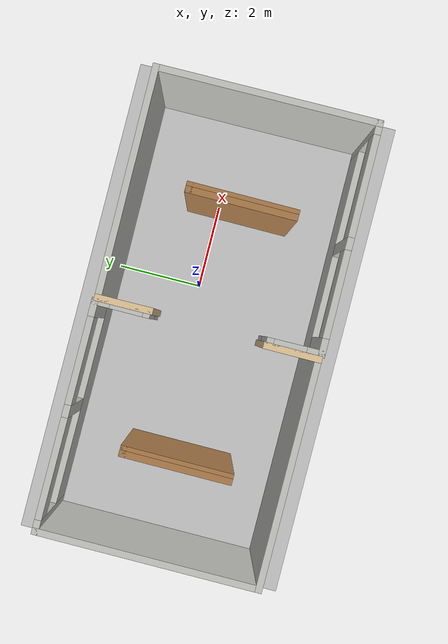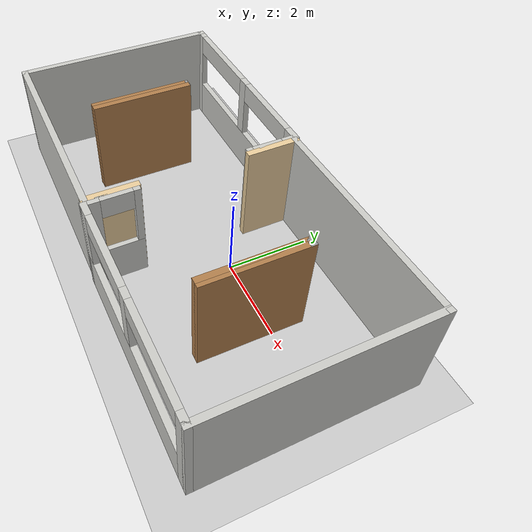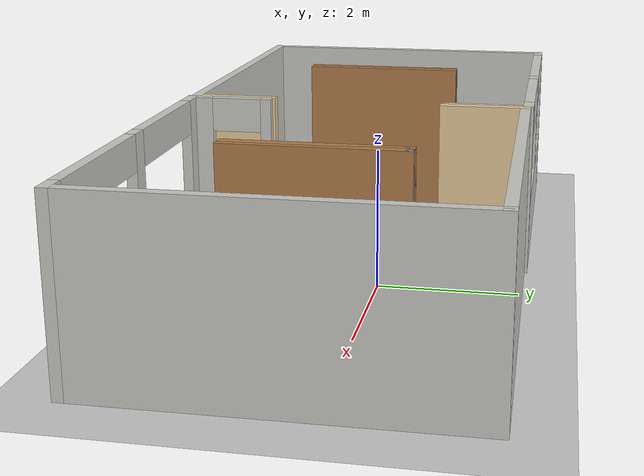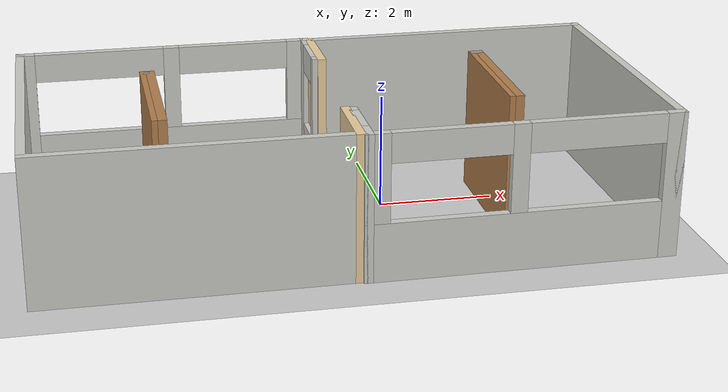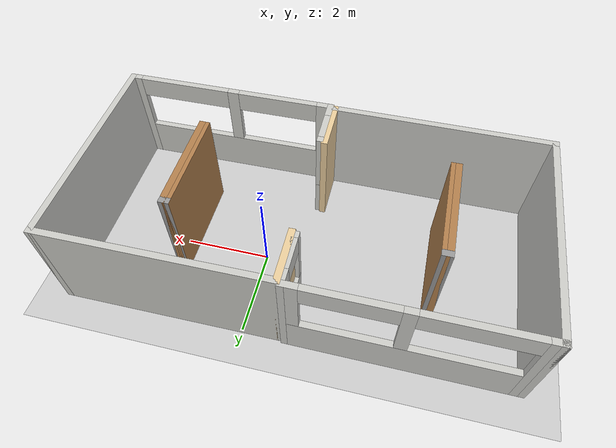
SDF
<sdf version="1.6">
 <world name="default">
  <light name="sun" type="directional">
   <pose>0 0 10 0 -0 0</pose>
   <diffuse>0.8 0.8 0.8 1</diffuse>
   <specular>0.2 0.2 0.2 1</specular>
   <attenuation>
    <range>1000</range>
    <constant>0.9</constant>
    <linear>0.01</linear>
    <quadratic>0.001</quadratic>
   </attenuation>
   <direction>-0.5 0.1 -0.9</direction>
  </light>
  <model name="ground_plane">
   <static>1</static>
   <link name="link">
    <collision name="collision">
     <geometry><plane><normal>0 0 1</normal><size>100 100</size></plane></geometry>
     <surface><friction><ode><mu>100</mu><mu2>50</mu2></ode></friction></surface>
    </collision>
    <visual name="visual">
     <cast_shadows>0</cast_shadows>
     <geometry><plane><normal>0 0 1</normal><size>100 100</size></plane></geometry>
     <material>
      <script><uri>file://media/materials/scripts/gazebo.material</uri><name>Gazebo/Grey</name></script>
     </material>
    </visual>
   </link>
  </model>
  <gravity>0 0 -9.8</gravity>
  <magnetic_field>6e-06 2.3e-05 -4.2e-05</magnetic_field>
  <atmosphere type="adiabatic"/>
  <physics name="default_physics" default="0" type="ode">
   <max_step_size>0.001</max_step_size>
   <real_time_factor>1</real_time_factor>
   <real_time_update_rate>1000</real_time_update_rate>
  </physics>
  <scene><ambient>0.4 0.4 0.4 1</ambient><background>0.7 0.7 0.7 1</background><shadows>1</shadows></scene>
  <spherical_coordinates>
   <surface_model>EARTH_WGS84</surface_model>
   <latitude_deg>0</latitude_deg>
   <longitude_deg>0</longitude_deg>
   <elevation>0</elevation>
   <heading_deg>0</heading_deg>
  </spherical_coordinates>
  <model name="Bay_Area">
   <pose>-3.5356 -0.453186 0 0 -0 0</pose>
   <link name="Wall_10">
    <collision name="Wall_10_Collision">
     <geometry><box><size>1.295 0.15 2.5</size></box></geometry>
     <pose>0 0 1.25 0 -0 0</pose>
    </collision>
    <visual name="Wall_10_Visual">
     <pose>0 0 1.25 0 -0 0</pose>
     <geometry><box><size>1.295 0.15 2.5</size></box></geometry>
     <material>
      <script><uri>file://media/materials/scripts/gazebo.material</uri><name>Gazebo/Grey</name></script>
      <ambient>0.921569 0.807843 0.615686 1</ambient>
     </material>
     <meta><layer>0</layer></meta>
    </visual>
    <pose>2.54 -1.8975 0 0 -0 1.5708</pose>
   </link>
   <link name="Wall_13">
    <collision name="Wall_13_Collision">
     <geometry><box><size>5.23 0.15 2.5</size></box></geometry>
     <pose>0 0 1.25 0 -0 0</pose>
    </collision>
    <visual name="Wall_13_Visual">
     <pose>0 0 1.25 0 -0 0</pose>
     <geometry><box><size>5.23 0.15 2.5</size></box></geometry>
     <material>
      <script><uri>file://media/materials/scripts/gazebo.material</uri><name>Gazebo/CeilingTiled</name></script>
      <ambient>0.921569 0.807843 0.615686 1</ambient>
     </material>
     <meta><layer>0</layer></meta>
    </visual>
    <pose>0 -2.47 0 0 -0 0</pose>
   </link>
   <link name="Wall_15">
    <pose>0 2.47 0 0 -0 0</pose>
    <visual name="Wall_15_Visual_0">
     <pose>-2.452 0 1.25 0 -0 0</pose>
     <geometry><box><size>0.326 0.15 2.5</size></box></geometry>
     <material>
      <script><uri>file://media/materials/scripts/gazebo.material</uri><name>Gazebo/CeilingTiled</name></script>
      <ambient>0.921569 0.807843 0.615686 1</ambient>
     </material>
     <meta><layer>0</layer></meta>
    </visual>
    <collision name="Wall_15_Collision_0">
     <geometry><box><size>0.326 0.15 2.5</size></box></geometry>
     <pose>-2.452 0 1.25 0 -0 0</pose>
    </collision>
    <visual name="Wall_15_Visual_1">
     <pose>0.163 0 0.5 0 -0 0</pose>
     <geometry><box><size>4.904 0.15 1</size></box></geometry>
     <material>
      <script><uri>file://media/materials/scripts/gazebo.material</uri><name>Gazebo/CeilingTiled</name></script>
      <ambient>0.921569 0.807843 0.615686 1</ambient>
     </material>
     <meta><layer>0</layer></meta>
    </visual>
    <collision name="Wall_15_Collision_1">
     <geometry><box><size>4.904 0.15 1</size></box></geometry>
     <pose>0.163 0 0.5 0 -0 0</pose>
    </collision>
    <visual name="Wall_15_Visual_2">
     <pose>0.111 0 1.75 0 -0 0</pose>
     <geometry><box><size>0.28 0.15 1.5</size></box></geometry>
     <material>
      <script><uri>file://media/materials/scripts/gazebo.material</uri><name>Gazebo/CeilingTiled</name></script>
      <ambient>0.921569 0.807843 0.615686 1</ambient>
     </material>
     <meta><layer>0</layer></meta>
    </visual>
    <collision name="Wall_15_Collision_2">
     <geometry><box><size>0.28 0.15 1.5</size></box></geometry>
     <pose>0.111 0 1.75 0 -0 0</pose>
    </collision>
    <visual name="Wall_15_Visual_3">
     <pose>2.408 0 1.75 0 -0 0</pose>
     <geometry><box><size>0.414 0.15 1.5</size></box></geometry>
     <material>
      <script><uri>file://media/materials/scripts/gazebo.material</uri><name>Gazebo/CeilingTiled</name></script>
      <ambient>0.921569 0.807843 0.615686 1</ambient>
     </material>
     <meta><layer>0</layer></meta>
    </visual>
    <collision name="Wall_15_Collision_3">
     <geometry><box><size>0.414 0.15 1.5</size></box></geometry>
     <pose>2.408 0 1.75 0 -0 0</pose>
    </collision>
    <visual name="Wall_15_Visual_4">
     <pose>-1.159 0 2.25 0 -0 0</pose>
     <geometry><box><size>2.26 0.15 0.5</size></box></geometry>
     <material>
      <script><uri>file://media/materials/scripts/gazebo.material</uri><name>Gazebo/CeilingTiled</name></script>
      <ambient>0.921569 0.807843 0.615686 1</ambient>
     </material>
     <meta><layer>0</layer></meta>
    </visual>
    <collision name="Wall_15_Collision_4">
     <geometry><box><size>2.26 0.15 0.5</size></box></geometry>
     <pose>-1.159 0 2.25 0 -0 0</pose>
    </collision>
    <visual name="Wall_15_Visual_5">
     <pose>1.226 0 2.25 0 -0 0</pose>
     <geometry><box><size>1.95 0.15 0.5</size></box></geometry>
     <material>
      <script><uri>file://media/materials/scripts/gazebo.material</uri><name>Gazebo/CeilingTiled</name></script>
      <ambient>0.921569 0.807843 0.615686 1</ambient>
     </material>
     <meta><layer>0</layer></meta>
    </visual>
    <collision name="Wall_15_Collision_5">
     <geometry><box><size>1.95 0.15 0.5</size></box></geometry>
     <pose>1.226 0 2.25 0 -0 0</pose>
    </collision>
   </link>
   <link name="Wall_17">
    <pose>2.54 1.8975 0 0 -0 -1.5708</pose>
    <visual name="Wall_17_Visual_0">
     <pose>-0.445 0 1.25 0 -0 0</pose>
     <geometry><box><size>0.405 0.15 2.5</size></box></geometry>
     <material>
      <script><uri>file://media/materials/scripts/gazebo.material</uri><name>Gazebo/CeilingTiled</name></script>
      <ambient>0.921569 0.807843 0.615686 1</ambient>
     </material>
     <meta><layer>0</layer></meta>
    </visual>
    <collision name="Wall_17_Collision_0">
     <geometry><box><size>0.405 0.15 2.5</size></box></geometry>
     <pose>-0.445 0 1.25 0 -0 0</pose>
    </collision>
    <visual name="Wall_17_Visual_1">
     <pose>0.2025 0 0.5 0 -0 0</pose>
     <geometry><box><size>0.89 0.15 1</size></box></geometry>
     <material>
      <script><uri>file://media/materials/scripts/gazebo.material</uri><name>Gazebo/CeilingTiled</name></script>
      <ambient>0.921569 0.807843 0.615686 1</ambient>
     </material>
     <meta><layer>0</layer></meta>
    </visual>
    <collision name="Wall_17_Collision_1">
     <geometry><box><size>0.89 0.15 1</size></box></geometry>
     <pose>0.2025 0 0.5 0 -0 0</pose>
    </collision>
    <visual name="Wall_17_Visual_2">
     <pose>0.5675 0 1.75 0 -0 0</pose>
     <geometry><box><size>0.16 0.15 1.5</size></box></geometry>
     <material>
      <script><uri>file://media/materials/scripts/gazebo.material</uri><name>Gazebo/CeilingTiled</name></script>
      <ambient>0.921569 0.807843 0.615686 1</ambient>
     </material>
     <meta><layer>0</layer></meta>
    </visual>
    <collision name="Wall_17_Collision_2">
     <geometry><box><size>0.16 0.15 1.5</size></box></geometry>
     <pose>0.5675 0 1.75 0 -0 0</pose>
    </collision>
    <visual name="Wall_17_Visual_3">
     <pose>0.1225 0 2.25 0 -0 0</pose>
     <geometry><box><size>0.73 0.15 0.5</size></box></geometry>
     <material>
      <script><uri>file://media/materials/scripts/gazebo.material</uri><name>Gazebo/CeilingTiled</name></script>
      <ambient>0.921569 0.807843 0.615686 1</ambient>
     </material>
     <meta><layer>0</layer></meta>
    </visual>
    <collision name="Wall_17_Collision_3">
     <geometry><box><size>0.73 0.15 0.5</size></box></geometry>
     <pose>0.1225 0 2.25 0 -0 0</pose>
    </collision>
   </link>
   <link name="Wall_8">
    <collision name="Wall_8_Collision">
     <geometry><box><size>5.09 0.15 2.5</size></box></geometry>
     <pose>0 0 1.25 0 -0 0</pose>
    </collision>
    <visual name="Wall_8_Visual">
     <pose>0 0 1.25 0 -0 0</pose>
     <geometry><box><size>5.09 0.15 2.5</size></box></geometry>
     <material>
      <script><uri>file://media/materials/scripts/gazebo.material</uri><name>Gazebo/CeilingTiled</name></script>
      <ambient>0.921569 0.807843 0.615686 1</ambient>
     </material>
     <meta><layer>0</layer></meta>
    </visual>
    <pose>-2.54 0 0 0 -0 -1.5708</pose>
   </link>
   <static>1</static>
  </model>
  <model name="Wall">
   <pose>-2.19519 -0.060066 0 0 -0 0</pose>
   <link name="Wall_3">
    <collision name="Wall_3_Collision">
     <geometry><box><size>2.5 0.15 2.5</size></box></geometry>
     <pose>0 0 1.25 0 -0 0</pose>
    </collision>
    <visual name="Wall_3_Visual">
     <pose>0 0 1.25 0 -0 0</pose>
     <geometry><box><size>2.5 0.15 2.5</size></box></geometry>
     <material>
      <script><uri>file://media/materials/scripts/gazebo.material</uri><name>Gazebo/Wood</name></script>
      <ambient>1 1 1 1</ambient>
     </material>
     <meta><layer>0</layer></meta>
    </visual>
    <pose>-1.8075 -0.4875 0 0 -0 1.5708</pose>
   </link>
   <link name="Wall_4">
    <collision name="Wall_4_Collision">
     <geometry><box><size>0.25 0.15 2.5</size></box></geometry>
     <pose>0 0 1.25 0 -0 0</pose>
    </collision>
    <visual name="Wall_4_Visual">
     <pose>0 0 1.25 0 -0 0</pose>
     <geometry><box><size>0.25 0.15 2.5</size></box></geometry>
     <material>
      <script><uri>file://media/materials/scripts/gazebo.material</uri><name>Gazebo/Grey</name></script>
      <ambient>1 1 1 1</ambient>
     </material>
     <meta><layer>0</layer></meta>
    </visual>
    <pose>-1.7575 0.6875 0 0 -0 0</pose>
   </link>
   <link name="Wall_5">
    <collision name="Wall_5_Collision">
     <geometry><box><size>2.5 0.15 2.5</size></box></geometry>
     <pose>0 0 1.25 0 -0 0</pose>
    </collision>
    <visual name="Wall_5_Visual">
     <pose>0 0 1.25 0 -0 0</pose>
     <geometry><box><size>2.5 0.15 2.5</size></box></geometry>
     <material>
      <script><uri>file://media/materials/scripts/gazebo.material</uri><name>Gazebo/Wood</name></script>
      <ambient>1 1 1 1</ambient>
     </material>
     <meta><layer>0</layer></meta>
    </visual>
    <pose>-1.7075 -0.4875 0 0 -0 -1.5708</pose>
   </link>
   <static>1</static>
  </model>
  <model name="modelBay2">
   <model name="Bay_Area">
    <pose>-2e-06 0 0 0 0 -3.1339</pose>
    <link name="Wall_10">
     <collision name="Wall_10_Collision">
      <geometry><box><size>1.295 0.15 2.5</size></box></geometry>
      <pose>0 0 1.25 0 -0 0</pose>
     </collision>
     <visual name="Wall_10_Visual">
      <pose>0 0 1.25 0 -0 0</pose>
      <geometry><box><size>1.295 0.15 2.5</size></box></geometry>
      <material>
       <script><uri>file://media/materials/scripts/gazebo.material</uri><name>Gazebo/Grey</name></script>
       <ambient>0.921569 0.807843 0.615686 1</ambient>
      </material>
      <meta><layer>0</layer></meta>
     </visual>
     <pose>2.54 -1.8975 0 0 -0 1.5708</pose>
    </link>
    <link name="Wall_13">
     <collision name="Wall_13_Collision">
      <geometry><box><size>5.23 0.15 2.5</size></box></geometry>
      <pose>0 0 1.25 0 -0 0</pose>
     </collision>
     <visual name="Wall_13_Visual">
      <pose>0 0 1.25 0 -0 0</pose>
      <geometry><box><size>5.23 0.15 2.5</size></box></geometry>
      <material>
       <script><uri>file://media/materials/scripts/gazebo.material</uri><name>Gazebo/CeilingTiled</name></script>
       <ambient>0.921569 0.807843 0.615686 1</ambient>
      </material>
      <meta><layer>0</layer></meta>
     </visual>
     <pose>0 -2.47 0 0 -0 0</pose>
    </link>
    <link name="Wall_15">
     <pose>0 2.47 0 0 -0 0</pose>
     <visual name="Wall_15_Visual_0">
      <pose>-2.452 0 1.25 0 -0 0</pose>
      <geometry><box><size>0.326 0.15 2.5</size></box></geometry>
      <material>
       <script><uri>file://media/materials/scripts/gazebo.material</uri><name>Gazebo/CeilingTiled</name></script>
       <ambient>0.921569 0.807843 0.615686 1</ambient>
      </material>
      <meta><layer>0</layer></meta>
     </visual>
     <collision name="Wall_15_Collision_0">
      <geometry><box><size>0.326 0.15 2.5</size></box></geometry>
      <pose>-2.452 0 1.25 0 -0 0</pose>
     </collision>
     <visual name="Wall_15_Visual_1">
      <pose>0.163 0 0.5 0 -0 0</pose>
      <geometry><box><size>4.904 0.15 1</size></box></geometry>
      <material>
       <script><uri>file://media/materials/scripts/gazebo.material</uri><name>Gazebo/CeilingTiled</name></script>
       <ambient>0.921569 0.807843 0.615686 1</ambient>
      </material>
      <meta><layer>0</layer></meta>
     </visual>
     <collision name="Wall_15_Collision_1">
      <geometry><box><size>4.904 0.15 1</size></box></geometry>
      <pose>0.163 0 0.5 0 -0 0</pose>
     </collision>
     <visual name="Wall_15_Visual_2">
      <pose>0.111 0 1.75 0 -0 0</pose>
      <geometry><box><size>0.28 0.15 1.5</size></box></geometry>
      <material>
       <script><uri>file://media/materials/scripts/gazebo.material</uri><name>Gazebo/CeilingTiled</name></script>
       <ambient>0.921569 0.807843 0.615686 1</ambient>
      </material>
      <meta><layer>0</layer></meta>
     </visual>
     <collision name="Wall_15_Collision_2">
      <geometry><box><size>0.28 0.15 1.5</size></box></geometry>
      <pose>0.111 0 1.75 0 -0 0</pose>
     </collision>
     <visual name="Wall_15_Visual_3">
      <pose>2.408 0 1.75 0 -0 0</pose>
      <geometry><box><size>0.414 0.15 1.5</size></box></geometry>
      <material>
       <script><uri>file://media/materials/scripts/gazebo.material</uri><name>Gazebo/CeilingTiled</name></script>
       <ambient>0.921569 0.807843 0.615686 1</ambient>
      </material>
      <meta><layer>0</layer></meta>
     </visual>
     <collision name="Wall_15_Collision_3">
      <geometry><box><size>0.414 0.15 1.5</size></box></geometry>
      <pose>2.408 0 1.75 0 -0 0</pose>
     </collision>
     <visual name="Wall_15_Visual_4">
      <pose>-1.159 0 2.25 0 -0 0</pose>
      <geometry><box><size>2.26 0.15 0.5</size></box></geometry>
      <material>
       <script><uri>file://media/materials/scripts/gazebo.material</uri><name>Gazebo/CeilingTiled</name></script>
       <ambient>0.921569 0.807843 0.615686 1</ambient>
      </material>
      <meta><layer>0</layer></meta>
     </visual>
     <collision name="Wall_15_Collision_4">
      <geometry><box><size>2.26 0.15 0.5</size></box></geometry>
      <pose>-1.159 0 2.25 0 -0 0</pose>
     </collision>
     <visual name="Wall_15_Visual_5">
      <pose>1.226 0 2.25 0 -0 0</pose>
      <geometry><box><size>1.95 0.15 0.5</size></box></geometry>
      <material>
       <script><uri>file://media/materials/scripts/gazebo.material</uri><name>Gazebo/CeilingTiled</name></script>
       <ambient>0.921569 0.807843 0.615686 1</ambient>
      </material>
      <meta><layer>0</layer></meta>
     </visual>
     <collision name="Wall_15_Collision_5">
      <geometry><box><size>1.95 0.15 0.5</size></box></geometry>
      <pose>1.226 0 2.25 0 -0 0</pose>
     </collision>
    </link>
    <link name="Wall_17">
     <pose>2.54 1.8975 0 0 -0 -1.5708</pose>
     <visual name="Wall_17_Visual_0">
      <pose>-0.445 0 1.25 0 -0 0</pose>
      <geometry><box><size>0.405 0.15 2.5</size></box></geometry>
      <material>
       <script><uri>file://media/materials/scripts/gazebo.material</uri><name>Gazebo/CeilingTiled</name></script>
       <ambient>0.921569 0.807843 0.615686 1</ambient>
      </material>
      <meta><layer>0</layer></meta>
     </visual>
     <collision name="Wall_17_Collision_0">
      <geometry><box><size>0.405 0.15 2.5</size></box></geometry>
      <pose>-0.445 0 1.25 0 -0 0</pose>
     </collision>
     <visual name="Wall_17_Visual_1">
      <pose>0.2025 0 0.5 0 -0 0</pose>
      <geometry><box><size>0.89 0.15 1</size></box></geometry>
      <material>
       <script><uri>file://media/materials/scripts/gazebo.material</uri><name>Gazebo/CeilingTiled</name></script>
       <ambient>0.921569 0.807843 0.615686 1</ambient>
      </material>
      <meta><layer>0</layer></meta>
     </visual>
     <collision name="Wall_17_Collision_1">
      <geometry><box><size>0.89 0.15 1</size></box></geometry>
      <pose>0.2025 0 0.5 0 -0 0</pose>
     </collision>
     <visual name="Wall_17_Visual_2">
      <pose>0.5675 0 1.75 0 -0 0</pose>
      <geometry><box><size>0.16 0.15 1.5</size></box></geometry>
      <material>
       <script><uri>file://media/materials/scripts/gazebo.material</uri><name>Gazebo/CeilingTiled</name></script>
       <ambient>0.921569 0.807843 0.615686 1</ambient>
      </material>
      <meta><layer>0</layer></meta>
     </visual>
     <collision name="Wall_17_Collision_2">
      <geometry><box><size>0.16 0.15 1.5</size></box></geometry>
      <pose>0.5675 0 1.75 0 -0 0</pose>
     </collision>
     <visual name="Wall_17_Visual_3">
      <pose>0.1225 0 2.25 0 -0 0</pose>
      <geometry><box><size>0.73 0.15 0.5</size></box></geometry>
      <material>
       <script><uri>file://media/materials/scripts/gazebo.material</uri><name>Gazebo/CeilingTiled</name></script>
       <ambient>0.921569 0.807843 0.615686 1</ambient>
      </material>
      <meta><layer>0</layer></meta>
     </visual>
     <collision name="Wall_17_Collision_3">
      <geometry><box><size>0.73 0.15 0.5</size></box></geometry>
      <pose>0.1225 0 2.25 0 -0 0</pose>
     </collision>
    </link>
    <link name="Wall_8">
     <collision name="Wall_8_Collision">
      <geometry><box><size>5.09 0.15 2.5</size></box></geometry>
      <pose>0 0 1.25 0 -0 0</pose>
     </collision>
     <visual name="Wall_8_Visual">
      <pose>0 0 1.25 0 -0 0</pose>
      <geometry><box><size>5.09 0.15 2.5</size></box></geometry>
      <material>
       <script><uri>file://media/materials/scripts/gazebo.material</uri><name>Gazebo/CeilingTiled</name></script>
       <ambient>0.921569 0.807843 0.615686 1</ambient>
      </material>
      <meta><layer>0</layer></meta>
     </visual>
     <pose>-2.54 0 0 0 -0 -1.5708</pose>
    </link>
    <static>1</static>
   </model>
   <static>0</static>
   <pose>1.64883 -0.472792 0 0 -0 0</pose>
  </model>
  <model name="Wall_0">
   <pose>3.62013 -0.007797 0 0 -0 0</pose>
   <link name="Wall_3">
    <collision name="Wall_3_Collision">
     <geometry><box><size>2.5 0.15 2.5</size></box></geometry>
     <pose>0 0 1.25 0 -0 0</pose>
    </collision>
    <visual name="Wall_3_Visual">
     <pose>0 0 1.25 0 -0 0</pose>
     <geometry><box><size>2.5 0.15 2.5</size></box></geometry>
     <material>
      <script><uri>file://media/materials/scripts/gazebo.material</uri><name>Gazebo/Wood</name></script>
      <ambient>1 1 1 1</ambient>
     </material>
     <meta><layer>0</layer></meta>
    </visual>
    <pose>-1.8075 -0.4875 0 0 -0 1.5708</pose>
   </link>
   <link name="Wall_4">
    <collision name="Wall_4_Collision">
     <geometry><box><size>0.25 0.15 2.5</size></box></geometry>
     <pose>0 0 1.25 0 -0 0</pose>
    </collision>
    <visual name="Wall_4_Visual">
     <pose>0 0 1.25 0 -0 0</pose>
     <geometry><box><size>0.25 0.15 2.5</size></box></geometry>
     <material>
      <script><uri>file://media/materials/scripts/gazebo.material</uri><name>Gazebo/Grey</name></script>
      <ambient>1 1 1 1</ambient>
     </material>
     <meta><layer>0</layer></meta>
    </visual>
    <pose>-1.7575 0.6875 0 0 -0 0</pose>
   </link>
   <link name="Wall_5">
    <collision name="Wall_5_Collision">
     <geometry><box><size>2.5 0.15 2.5</size></box></geometry>
     <pose>0 0 1.25 0 -0 0</pose>
    </collision>
    <visual name="Wall_5_Visual">
     <pose>0 0 1.25 0 -0 0</pose>
     <geometry><box><size>2.5 0.15 2.5</size></box></geometry>
     <material>
      <script><uri>file://media/materials/scripts/gazebo.material</uri><name>Gazebo/Wood</name></script>
      <ambient>1 1 1 1</ambient>
     </material>
     <meta><layer>0</layer></meta>
    </visual>
    <pose>-1.7075 -0.4875 0 0 -0 -1.5708</pose>
   </link>
   <static>1</static>
  </model>
 </world>
</sdf>
